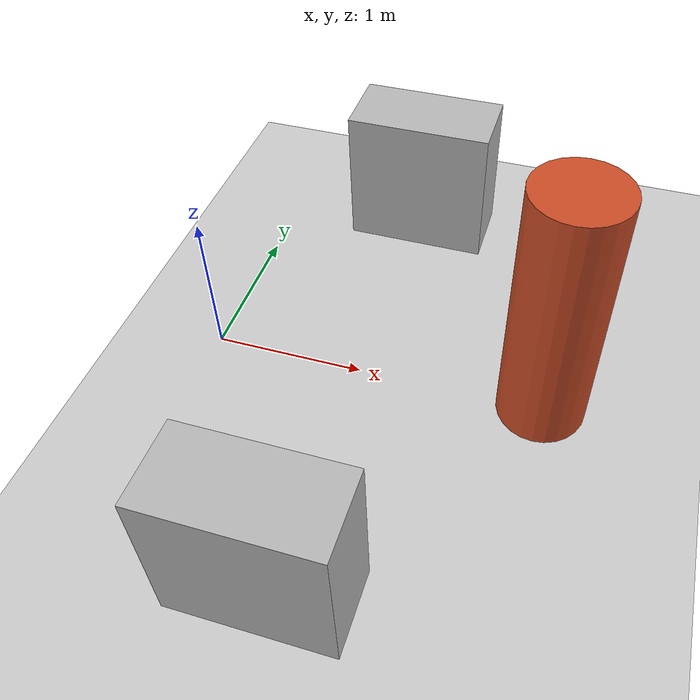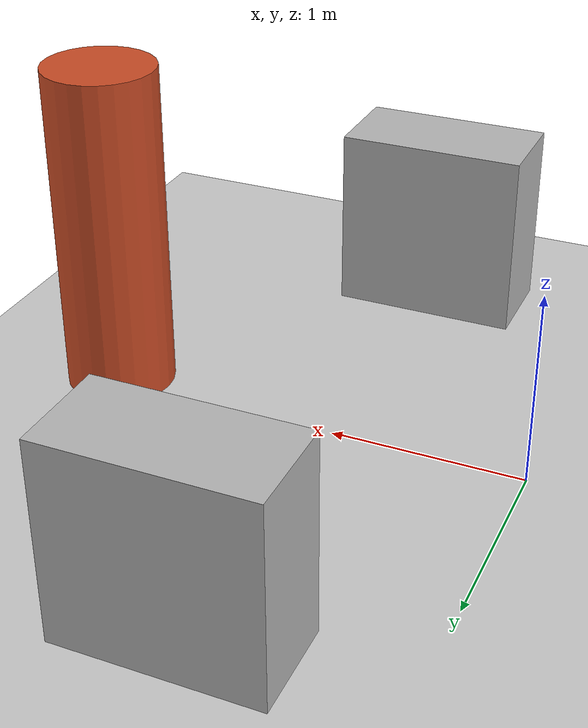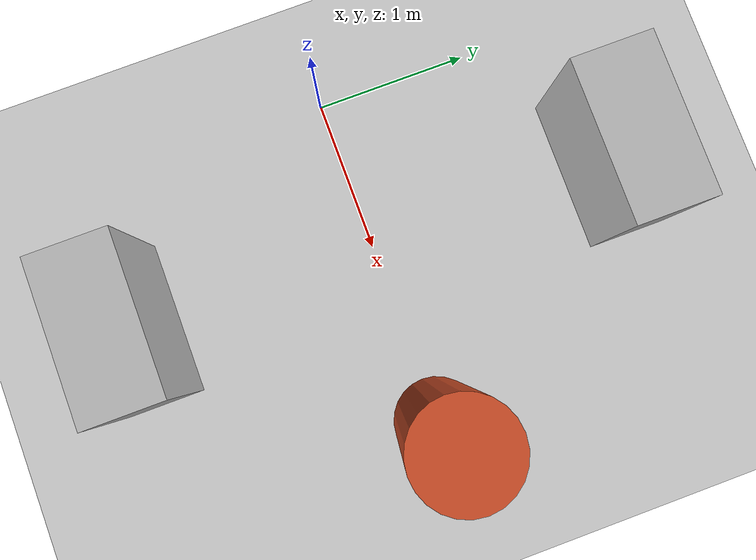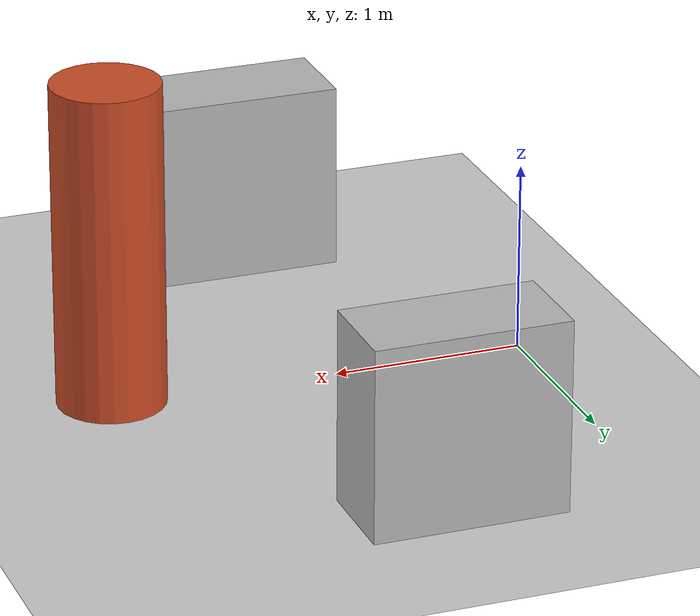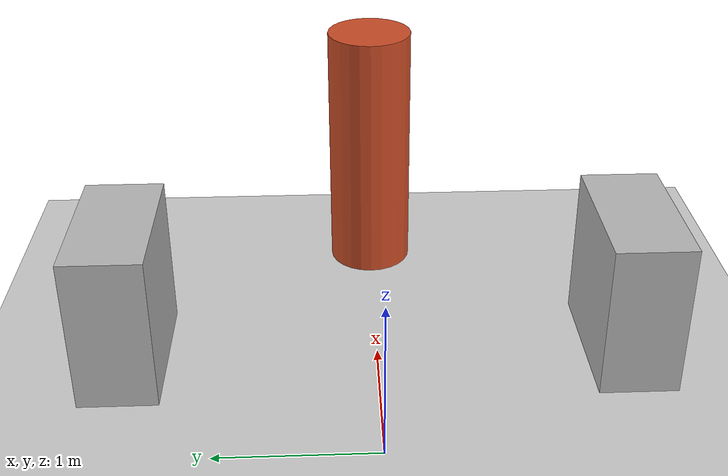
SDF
<?xml version="1.0" ?>
<sdf version="1.6">
  <world name="classic_detector_world">
    <include><uri>model://ground_plane</uri></include>
    <include><uri>model://sun</uri></include>

    <model name="target_person">
      <static>true</static>
      <pose>2.2 0.0 0.9 0 0 0</pose>
      <link name="body">
        <collision name="collision"><geometry><cylinder><radius>0.28</radius><length>1.7</length></cylinder></geometry></collision>
        <visual name="visual"><geometry><cylinder><radius>0.28</radius><length>1.7</length></cylinder></geometry><material><ambient>0.8 0.3 0.15 1</ambient><diffuse>0.8 0.3 0.15 1</diffuse></material></visual>
      </link>
    </model>

    <model name="obstacle_left">
      <static>true</static><pose>1.0 1.6 0.5 0 0 0</pose>
      <link name="link"><collision name="collision"><geometry><box><size>1.0 0.5 1.0</size></box></geometry></collision><visual name="visual"><geometry><box><size>1.0 0.5 1.0</size></box></geometry></visual></link>
    </model>
    <model name="obstacle_right">
      <static>true</static><pose>1.0 -1.6 0.5 0 0 0</pose>
      <link name="link"><collision name="collision"><geometry><box><size>1.0 0.5 1.0</size></box></geometry></collision><visual name="visual"><geometry><box><size>1.0 0.5 1.0</size></box></geometry></visual></link>
    </model>
  </world>
</sdf>
